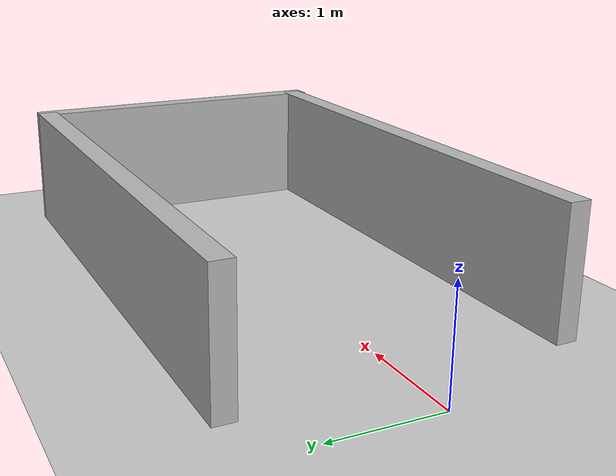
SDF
<?xml version="1.0"?>
<sdf version="1.6">
  <world name="v2-04g-r2-maneuver-s4964">
    <gravity>0 0 -9.81</gravity>
    <physics name="v2_deterministic" type="ode">
      <max_step_size>0.002</max_step_size>
      <real_time_update_rate>500</real_time_update_rate>
    </physics>
    <include>
      <uri>model://sun</uri>
    </include>
    <include>
      <uri>model://ground_plane</uri>
    </include>
    <model name="bay-left">
      <static>true</static>
      <pose>2.998385037 1.489650230 0.600000000 0 0 -0.000140984</pose>
      <link name="link">
        <collision name="collision">
          <geometry>
            <box>
              <size>5.000000 0.200000 1.200000</size>
            </box>
          </geometry>
        </collision>
        <visual name="visual">
          <geometry>
            <box>
              <size>5.000000 0.200000 1.200000</size>
            </box>
          </geometry>
        </visual>
      </link>
    </model>
    <model name="bay-right">
      <static>true</static>
      <pose>3.001737249 -1.490442983 0.600000000 0 0 0.001321940</pose>
      <link name="link">
        <collision name="collision">
          <geometry>
            <box>
              <size>5.000000 0.200000 1.200000</size>
            </box>
          </geometry>
        </collision>
        <visual name="visual">
          <geometry>
            <box>
              <size>5.000000 0.200000 1.200000</size>
            </box>
          </geometry>
        </visual>
      </link>
    </model>
    <model name="bay-back">
      <static>true</static>
      <pose>5.475874853 -0.012118604 0.600000000 0 0 -0.002837595</pose>
      <link name="link">
        <collision name="collision">
          <geometry>
            <box>
              <size>0.200000 3.200000 1.200000</size>
            </box>
          </geometry>
        </collision>
        <visual name="visual">
          <geometry>
            <box>
              <size>0.200000 3.200000 1.200000</size>
            </box>
          </geometry>
        </visual>
      </link>
    </model>
  </world>
</sdf>
